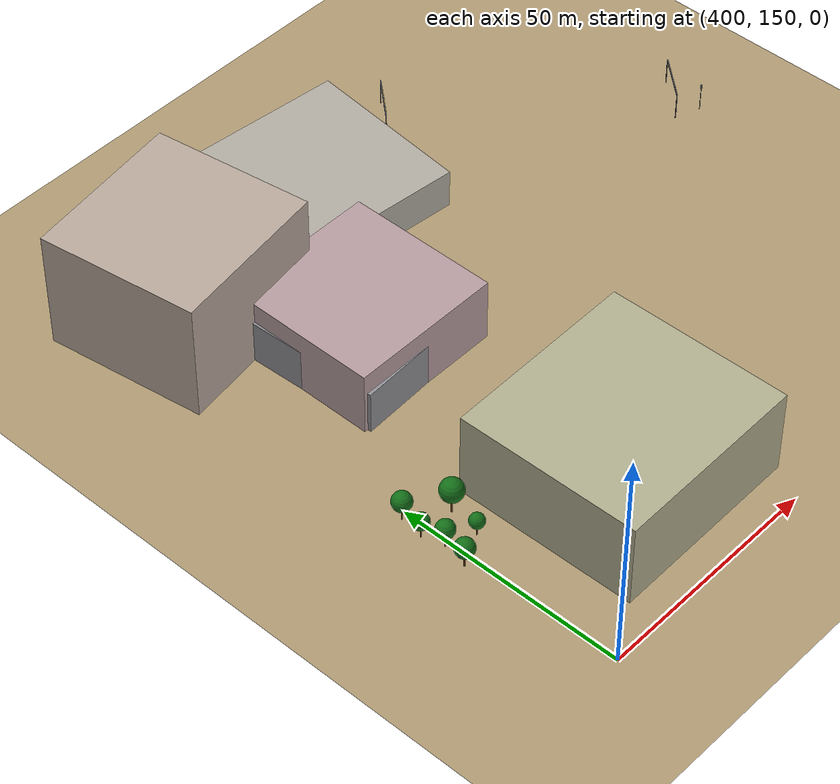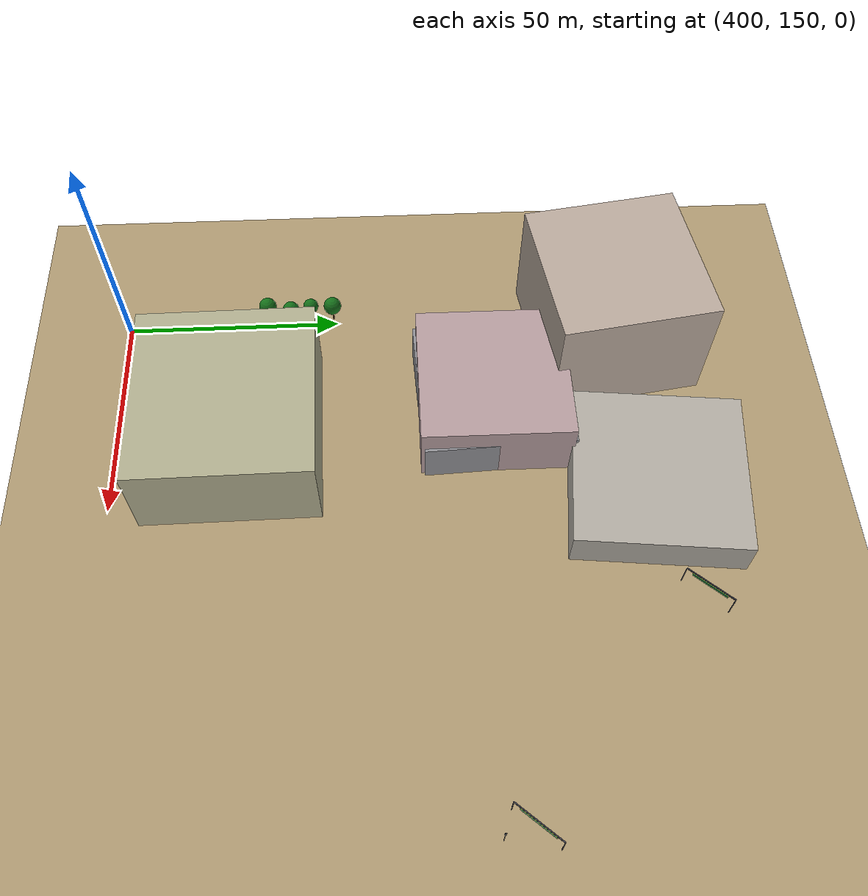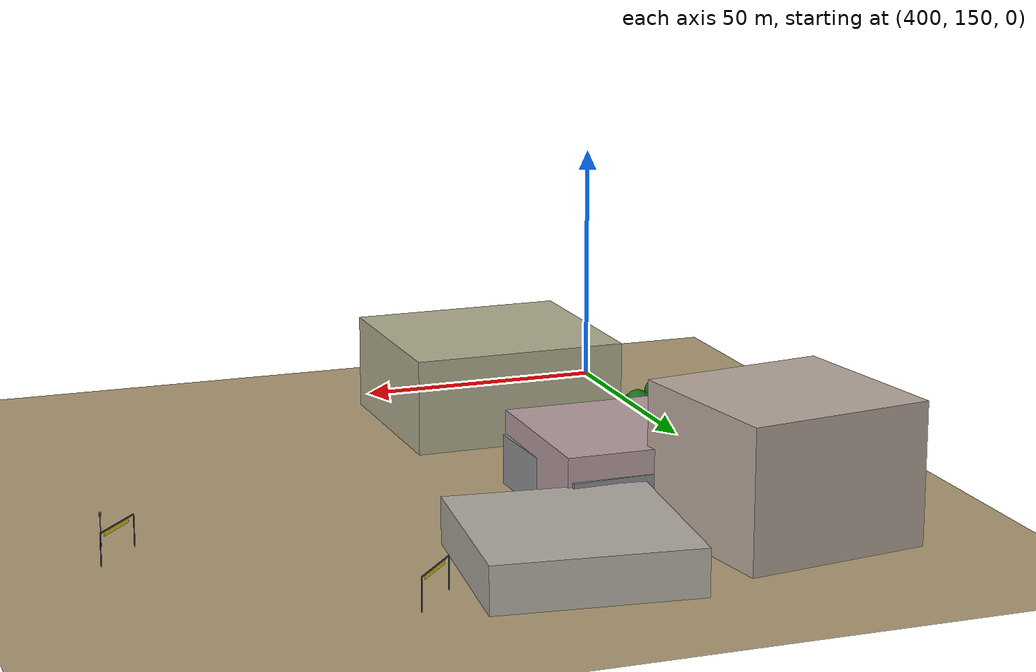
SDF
<sdf version="1.9">
 <world name="crossroad_world">
  <model name="ground_plane">
   <static>true</static>
   <pose>0 0 -0.05 0 0 0</pose>
   <link name="link">
    <collision name="collision">
     <geometry><plane><normal>0 0 1</normal><size>10000 10000</size></plane></geometry>
    </collision>
    <visual name="visual">
     <geometry><plane><normal>0 0 1</normal><size>15000 15000</size></plane></geometry>
     <material><ambient>0.68 0.60 0.45 1</ambient><diffuse>0.68 0.60 0.45 1</diffuse></material>
    </visual>
   </link>
  </model>
  <model name="tl_9">
   <static>true</static>
   <pose>522.935 230.430 0 0 0 2.424</pose>
   <link name="link">
    <visual name="pole">
     <pose>0 0 2.750 0 0 0</pose>
     <geometry><cylinder><radius>0.06</radius><length>5.50</length></cylinder></geometry>
     <material><ambient>0.25 0.25 0.25 1</ambient><diffuse>0.25 0.25 0.25 1</diffuse></material>
    </visual>
    <visual name="housing">
     <pose>0 0 5.950 0 0 0</pose>
     <geometry><box><size>0.33 0.33 0.9</size></box></geometry>
     <material><ambient>0.08 0.08 0.08 1</ambient><diffuse>0.08 0.08 0.08 1</diffuse></material>
    </visual>
    <visual name="red">
     <pose>0 0 6.250 0 0 0</pose>
     <geometry><sphere><radius>0.09</radius></sphere></geometry>
     <material>
      <ambient>0.90 0.05 0.05 1</ambient>
      <diffuse>0.90 0.05 0.05 1</diffuse>
      <emissive>0.6 0 0 1</emissive>
     </material>
    </visual>
    <visual name="amber">
     <pose>0 0 5.950 0 0 0</pose>
     <geometry><sphere><radius>0.09</radius></sphere></geometry>
     <material><ambient>0.90 0.55 0.00 1</ambient><diffuse>0.90 0.55 0.00 1</diffuse></material>
    </visual>
    <visual name="green">
     <pose>0 0 5.650 0 0 0</pose>
     <geometry><sphere><radius>0.09</radius></sphere></geometry>
     <material><ambient>0.00 0.78 0.00 1</ambient><diffuse>0.00 0.78 0.00 1</diffuse></material>
    </visual>
    <collision name="col">
     <pose>0 0 2.750 0 0 0</pose>
     <geometry><cylinder><radius>0.06</radius><length>5.50</length></cylinder></geometry>
    </collision>
   </link>
  </model>
  <model name="gantry_132">
   <static>true</static>
   <pose>475.923 276.110 0 0 0 0.853</pose>
   <link name="link">
    <visual name="post_l">
     <pose>-5.700 0 2.925 0 0 0</pose>
     <geometry><cylinder><radius>0.1</radius><length>5.85</length></cylinder></geometry>
     <material><ambient>0.30 0.30 0.35 1</ambient><diffuse>0.30 0.30 0.35 1</diffuse></material>
    </visual>
    <visual name="post_r">
     <pose>5.700 0 2.925 0 0 0</pose>
     <geometry><cylinder><radius>0.1</radius><length>5.85</length></cylinder></geometry>
     <material><ambient>0.30 0.30 0.35 1</ambient><diffuse>0.30 0.30 0.35 1</diffuse></material>
    </visual>
    <visual name="beam">
     <pose>0 0 6.000 0 0 0</pose>
     <geometry><box><size>11.400 0.22 0.22</size></box></geometry>
     <material><ambient>0.30 0.30 0.35 1</ambient><diffuse>0.30 0.30 0.35 1</diffuse></material>
    </visual>
    <visual name="sign_border">
     <pose>0 -0.14 5.450 0 0 0</pose>
     <geometry><box><size>8.288 0.04 0.92</size></box></geometry>
     <material><ambient>0.90 0.85 0.10 1</ambient><diffuse>0.90 0.85 0.10 1</diffuse></material>
    </visual>
    <visual name="sign_panel">
     <pose>0 -0.15 5.450 0 0 0</pose>
     <geometry><box><size>8.208 0.05 0.86</size></box></geometry>
     <material><ambient>0.05 0.38 0.10 1</ambient><diffuse>0.05 0.38 0.10 1</diffuse></material>
    </visual>
    <collision name="col_post_l">
     <pose>-5.700 0 2.925 0 0 0</pose>
     <geometry><cylinder><radius>0.1</radius><length>5.85</length></cylinder></geometry>
    </collision>
    <collision name="col_post_r">
     <pose>5.700 0 2.925 0 0 0</pose>
     <geometry><cylinder><radius>0.1</radius><length>5.85</length></cylinder></geometry>
    </collision>
    <collision name="col_beam">
     <pose>0 0 6.000 0 0 0</pose>
     <geometry><box><size>11.400 0.22 0.22</size></box></geometry>
    </collision>
   </link>
  </model>
  <model name="gantry_133">
   <static>true</static>
   <pose>521.120 236.648 0 0 0 0.853</pose>
   <link name="link">
    <visual name="post_l">
     <pose>-5.700 0 2.925 0 0 0</pose>
     <geometry><cylinder><radius>0.1</radius><length>5.85</length></cylinder></geometry>
     <material><ambient>0.30 0.30 0.35 1</ambient><diffuse>0.30 0.30 0.35 1</diffuse></material>
    </visual>
    <visual name="post_r">
     <pose>5.700 0 2.925 0 0 0</pose>
     <geometry><cylinder><radius>0.1</radius><length>5.85</length></cylinder></geometry>
     <material><ambient>0.30 0.30 0.35 1</ambient><diffuse>0.30 0.30 0.35 1</diffuse></material>
    </visual>
    <visual name="beam">
     <pose>0 0 6.000 0 0 0</pose>
     <geometry><box><size>11.400 0.22 0.22</size></box></geometry>
     <material><ambient>0.30 0.30 0.35 1</ambient><diffuse>0.30 0.30 0.35 1</diffuse></material>
    </visual>
    <visual name="sign_border">
     <pose>0 -0.14 5.450 0 0 0</pose>
     <geometry><box><size>8.288 0.04 0.92</size></box></geometry>
     <material><ambient>0.90 0.85 0.10 1</ambient><diffuse>0.90 0.85 0.10 1</diffuse></material>
    </visual>
    <visual name="sign_panel">
     <pose>0 -0.15 5.450 0 0 0</pose>
     <geometry><box><size>8.208 0.05 0.86</size></box></geometry>
     <material><ambient>0.05 0.38 0.10 1</ambient><diffuse>0.05 0.38 0.10 1</diffuse></material>
    </visual>
    <collision name="col_post_l">
     <pose>-5.700 0 2.925 0 0 0</pose>
     <geometry><cylinder><radius>0.1</radius><length>5.85</length></cylinder></geometry>
    </collision>
    <collision name="col_post_r">
     <pose>5.700 0 2.925 0 0 0</pose>
     <geometry><cylinder><radius>0.1</radius><length>5.85</length></cylinder></geometry>
    </collision>
    <collision name="col_beam">
     <pose>0 0 6.000 0 0 0</pose>
     <geometry><box><size>11.400 0.22 0.22</size></box></geometry>
    </collision>
   </link>
  </model>
  <model name="tree_167">
   <static>true</static>
   <pose>397.865 183.530 0 0 0 0</pose>
   <link name="link">
    <visual name="trunk">
     <pose>0 0 1.734 0 0 0</pose>
     <geometry><cylinder><radius>0.152</radius><length>3.467</length></cylinder></geometry>
     <material><ambient>0.38 0.22 0.08 1</ambient><diffuse>0.38 0.22 0.08 1</diffuse></material>
    </visual>
    <visual name="canopy">
     <pose>0 0 4.805 0 0 0</pose>
     <geometry><sphere><radius>2.059</radius></sphere></geometry>
     <material><ambient>0.08 0.44 0.10 1</ambient><diffuse>0.08 0.44 0.10 1</diffuse></material>
    </visual>
    <collision name="col">
     <pose>0 0 1.734 0 0 0</pose>
     <geometry><cylinder><radius>0.152</radius><length>3.467</length></cylinder></geometry>
    </collision>
   </link>
  </model>
  <model name="tree_168">
   <static>true</static>
   <pose>398.933 189.103 0 0 0 0</pose>
   <link name="link">
    <visual name="trunk">
     <pose>0 0 1.654 0 0 0</pose>
     <geometry><cylinder><radius>0.145</radius><length>3.307</length></cylinder></geometry>
     <material><ambient>0.38 0.22 0.08 1</ambient><diffuse>0.38 0.22 0.08 1</diffuse></material>
    </visual>
    <visual name="canopy">
     <pose>0 0 4.584 0 0 0</pose>
     <geometry><sphere><radius>1.964</radius></sphere></geometry>
     <material><ambient>0.08 0.44 0.10 1</ambient><diffuse>0.08 0.44 0.10 1</diffuse></material>
    </visual>
    <collision name="col">
     <pose>0 0 1.654 0 0 0</pose>
     <geometry><cylinder><radius>0.145</radius><length>3.307</length></cylinder></geometry>
    </collision>
   </link>
  </model>
  <model name="tree_169">
   <static>true</static>
   <pose>397.631 193.796 0 0 0 0</pose>
   <link name="link">
    <visual name="trunk">
     <pose>0 0 1.489 0 0 0</pose>
     <geometry><cylinder><radius>0.130</radius><length>2.977</length></cylinder></geometry>
     <material><ambient>0.38 0.22 0.08 1</ambient><diffuse>0.38 0.22 0.08 1</diffuse></material>
    </visual>
    <visual name="canopy">
     <pose>0 0 4.126 0 0 0</pose>
     <geometry><sphere><radius>1.768</radius></sphere></geometry>
     <material><ambient>0.08 0.44 0.10 1</ambient><diffuse>0.08 0.44 0.10 1</diffuse></material>
    </visual>
    <collision name="col">
     <pose>0 0 1.489 0 0 0</pose>
     <geometry><cylinder><radius>0.130</radius><length>2.977</length></cylinder></geometry>
    </collision>
   </link>
  </model>
  <model name="tree_170">
   <static>true</static>
   <pose>398.367 199.054 0 0 0 0</pose>
   <link name="link">
    <visual name="trunk">
     <pose>0 0 1.739 0 0 0</pose>
     <geometry><cylinder><radius>0.152</radius><length>3.479</length></cylinder></geometry>
     <material><ambient>0.38 0.22 0.08 1</ambient><diffuse>0.38 0.22 0.08 1</diffuse></material>
    </visual>
    <visual name="canopy">
     <pose>0 0 4.822 0 0 0</pose>
     <geometry><sphere><radius>2.066</radius></sphere></geometry>
     <material><ambient>0.08 0.44 0.10 1</ambient><diffuse>0.08 0.44 0.10 1</diffuse></material>
    </visual>
    <collision name="col">
     <pose>0 0 1.739 0 0 0</pose>
     <geometry><cylinder><radius>0.152</radius><length>3.479</length></cylinder></geometry>
    </collision>
   </link>
  </model>
  <model name="tree_171">
   <static>true</static>
   <pose>404.763 186.781 0 0 0 0</pose>
   <link name="link">
    <visual name="trunk">
     <pose>0 0 1.343 0 0 0</pose>
     <geometry><cylinder><radius>0.118</radius><length>2.686</length></cylinder></geometry>
     <material><ambient>0.38 0.22 0.08 1</ambient><diffuse>0.38 0.22 0.08 1</diffuse></material>
    </visual>
    <visual name="canopy">
     <pose>0 0 3.723 0 0 0</pose>
     <geometry><sphere><radius>1.595</radius></sphere></geometry>
     <material><ambient>0.08 0.44 0.10 1</ambient><diffuse>0.08 0.44 0.10 1</diffuse></material>
    </visual>
    <collision name="col">
     <pose>0 0 1.343 0 0 0</pose>
     <geometry><cylinder><radius>0.118</radius><length>2.686</length></cylinder></geometry>
    </collision>
   </link>
  </model>
  <model name="tree_172">
   <static>true</static>
   <pose>405.824 193.772 0 0 0 0</pose>
   <link name="link">
    <visual name="trunk">
     <pose>0 0 2.072 0 0 0</pose>
     <geometry><cylinder><radius>0.181</radius><length>4.143</length></cylinder></geometry>
     <material><ambient>0.38 0.22 0.08 1</ambient><diffuse>0.38 0.22 0.08 1</diffuse></material>
    </visual>
    <visual name="canopy">
     <pose>0 0 5.743 0 0 0</pose>
     <geometry><sphere><radius>2.460</radius></sphere></geometry>
     <material><ambient>0.08 0.44 0.10 1</ambient><diffuse>0.08 0.44 0.10 1</diffuse></material>
    </visual>
    <collision name="col">
     <pose>0 0 2.072 0 0 0</pose>
     <geometry><cylinder><radius>0.181</radius><length>4.143</length></cylinder></geometry>
    </collision>
   </link>
  </model>
  <model name="building_89">
   <static>true</static>
   <pose>426.407 235.328 7.117 0 0 -0.001</pose>
   <link name="link">
    <visual name="body">
     <geometry><box><size>33.83 33.39 14.23</size></box></geometry>
     <material><ambient>0.71 0.61 0.62 1</ambient><diffuse>0.71 0.61 0.62 1</diffuse></material>
    </visual>
    <collision name="col"><geometry><box><size>33.83 33.39 14.23</size></box></geometry></collision>
   </link>
  </model>
  <model name="building_90">
   <static>true</static>
   <pose>426.407 235.328 4.809 0 0 0.046</pose>
   <link name="link">
    <visual name="body">
     <geometry><box><size>33.83 33.39 9.62</size></box></geometry>
     <material><ambient>0.56 0.56 0.58 1</ambient><diffuse>0.56 0.56 0.58 1</diffuse></material>
    </visual>
    <collision name="col"><geometry><box><size>33.83 33.39 9.62</size></box></geometry></collision>
   </link>
  </model>
  <model name="building_91">
   <static>true</static>
   <pose>449.367 269.513 4.351 0 0 -0.106</pose>
   <link name="link">
    <visual name="body">
     <geometry><box><size>37.67 37.45 8.70</size></box></geometry>
     <material><ambient>0.69 0.67 0.63 1</ambient><diffuse>0.69 0.67 0.63 1</diffuse></material>
    </visual>
    <collision name="col"><geometry><box><size>37.67 37.45 8.70</size></box></geometry></collision>
   </link>
  </model>
  <model name="building_527">
   <static>true</static>
   <pose>406.924 264.172 13.285 0 0 0.147</pose>
   <link name="link">
    <visual name="body">
     <geometry><box><size>35.72 34.91 26.57</size></box></geometry>
     <material><ambient>0.72 0.66 0.61 1</ambient><diffuse>0.72 0.66 0.61 1</diffuse></material>
    </visual>
    <collision name="col"><geometry><box><size>35.72 34.91 26.57</size></box></geometry></collision>
   </link>
  </model>
  <model name="building_655">
   <static>true</static>
   <pose>432.312 176.661 9.476 0 0 0.012</pose>
   <link name="link">
    <visual name="body">
     <geometry><box><size>43.03 39.66 18.95</size></box></geometry>
     <material><ambient>0.69 0.68 0.56 1</ambient><diffuse>0.69 0.68 0.56 1</diffuse></material>
    </visual>
    <collision name="col"><geometry><box><size>43.03 39.66 18.95</size></box></geometry></collision>
   </link>
  </model>
 </world>
</sdf>
